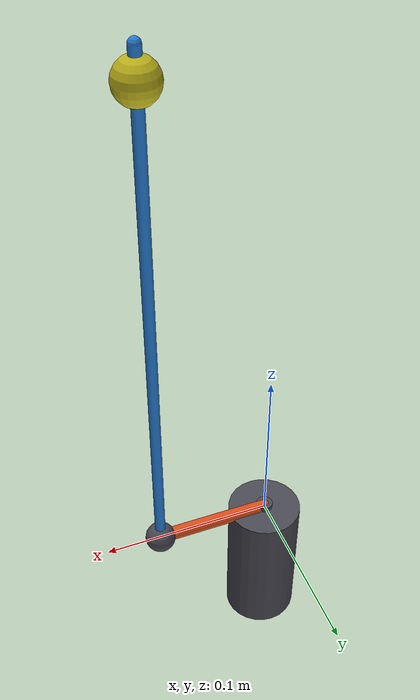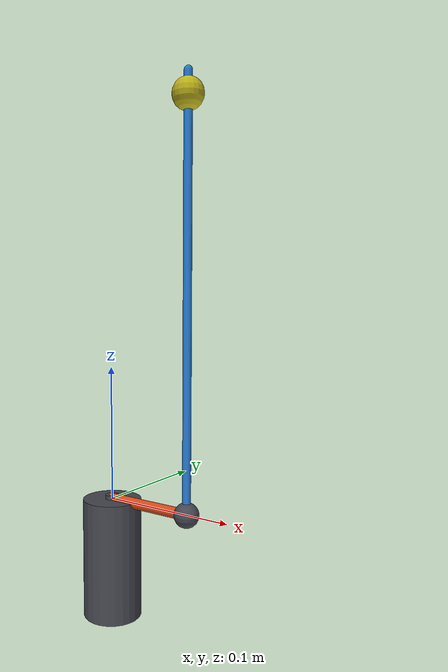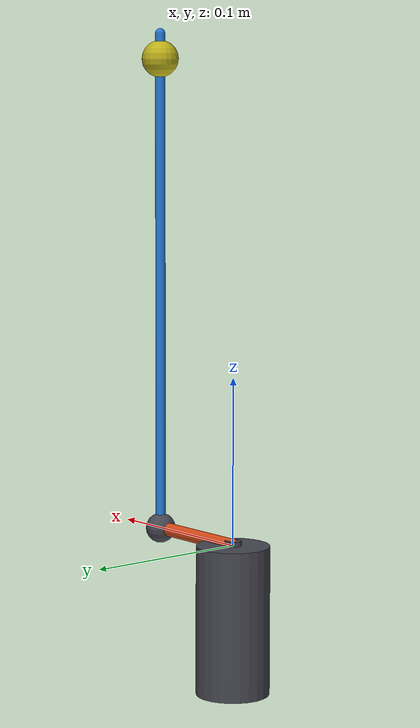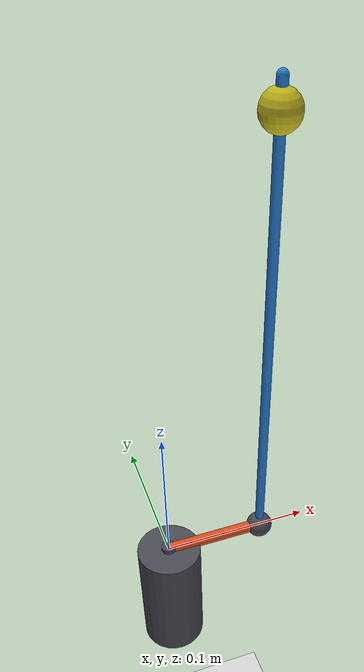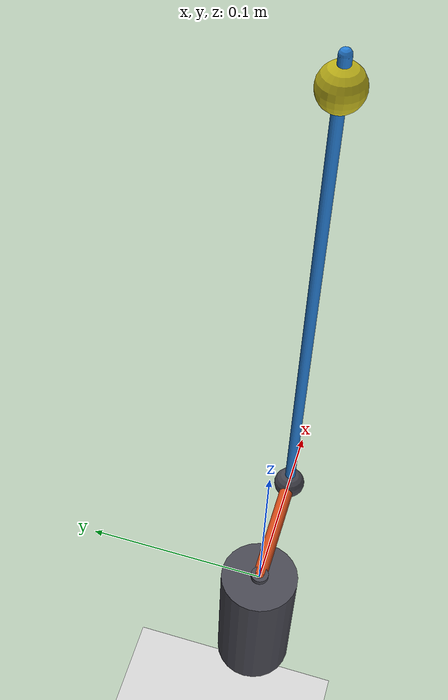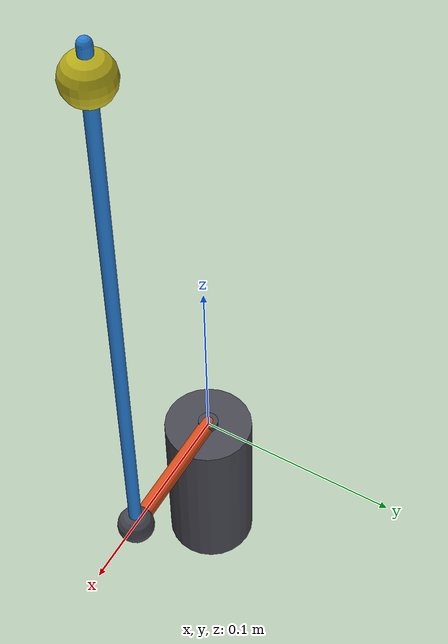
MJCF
<mujoco model="furuta_pendulum_high_quality">

    <compiler angle="radian"/>
    <option timestep="0.001" gravity="0 0 -9.81"/>

    <statistic extent="0.5" center="0.03 0 0.1"/>

    <visual>
        <headlight diffuse="0.5 0.5 0.5" ambient="0.2 0.2 0.2" specular="0.1 0.1 0.1"/>
        <rgba haze="0.8 0.9 1 1"/>
        <quality shadowsize="4096" offsamples="8"/>
        <global offwidth="1280" offheight="720"/>
    </visual>

    <asset>
        <texture type="skybox" builtin="gradient"
                 rgb1="0.92 0.92 0.95" rgb2="0.55 0.65 0.85"
                 width="512" height="512"/>
        <material name="floor_mat"  rgba="0.82 0.82 0.82 1" specular="0.1" shininess="0.2"/>
        <material name="base_mat"   rgba="0.28 0.28 0.32 1" specular="0.5" shininess="0.5"/>
        <material name="arm_mat"    rgba="0.85 0.30 0.10 1" specular="0.5" shininess="0.4"/>
        <material name="pend_mat"   rgba="0.15 0.50 0.85 1" specular="0.5" shininess="0.4"/>
        <material name="weight_mat" rgba="0.75 0.70 0.10 1" specular="0.6" shininess="0.5"/>
    </asset>

    <worldbody>

        <light pos="0.3 0.3 1.0" dir="-0.3 -0.3 -1" castshadow="true"/>
        <light pos="-0.3 0.3 0.8" diffuse="0.45 0.45 0.45" castshadow="false"/>

        <geom type="plane" pos="0 0 -0.40" size="1.5 1.5 0.1"
              material="floor_mat" contype="0" conaffinity="0"/>

        <body name="base" pos="0 0 0">
            <!-- Motor housing + gearbox column (visual only) -->
            <geom type="cylinder" pos="0 0 -0.045" size="0.022 0.045"
                  material="base_mat" contype="0" conaffinity="0"/>
            <!-- Output shaft stub -->
            <geom type="cylinder" pos="0 0 0" size="0.005 0.003"
                  material="base_mat" contype="0" conaffinity="0"/>

            <body name="link1" pos="0 0 0">
                <joint name="joint1" type="hinge" axis="0 0 1"
                       armature="8.797e-3"
                       damping="2.0e-3"
                       frictionloss="0.0"/>
                <inertial pos="0.049 0 0" mass="0.022"
                          diaginertia="1e-7 8.382e-6 8.382e-6"/>

                <!-- PLA bar from motor axis to pendulum pivot -->
                <geom type="capsule" fromto="0 0 0 0.0676 0 0" size="0.004"
                      material="arm_mat" contype="0" conaffinity="0"/>
                <!-- Bearing at pivot point (the 9g bearing that acts as pendulum axis) -->
                <geom type="sphere" pos="0.0676 0 0" size="0.009"
                      material="base_mat" contype="0" conaffinity="0"/>

                <body name="pendulum" pos="0.0676 0 0">
                    <joint name="encoder_joint" type="hinge" axis="1 0 0"
                           damping="3.01e-4"/>
                    <inertial pos="0 0 0.2149" mass="0.034"
                              diaginertia="2.550e-4 2.550e-4 1e-7"/>

                    <!-- Pendulum rod (PLA/acrylic stick, 300 mm) -->
                    <geom type="capsule" fromto="0 0 0 0 0 0.300" size="0.003"
                          material="pend_mat" contype="0" conaffinity="0"/>
                    <!-- Attachment: bearing used as counterweight at 285 mm from pivot -->
                    <geom type="sphere" pos="0 0 0.285" size="0.011"
                          material="weight_mat" contype="0" conaffinity="0"/>
                </body>

            </body>
        </body>
    </worldbody>

    <actuator>
        <general name="dc_motor" joint="joint1"
                 gaintype="fixed"  gainprm="0.2184"
                 biastype="affine" biasprm="0 0 -0.2385"
                 ctrlrange="-12 12"
                 forcerange="-2.621 2.621"/>
    </actuator>

    <sensor>
        <jointpos name="pendulum_pos" joint="encoder_joint"/>
        <jointvel name="pendulum_vel" joint="encoder_joint"/>
        <jointpos name="arm_pos"      joint="joint1"/>
        <jointvel name="arm_vel"      joint="joint1"/>
    </sensor>

    <keyframe>
        <key name="upright" qpos="0 0"          ctrl="0"/>
        <key name="hanging" qpos="0 3.14159265" ctrl="0"/>
    </keyframe>

</mujoco>
